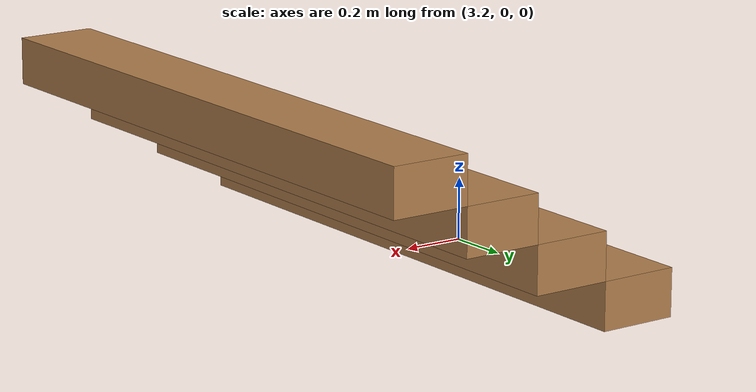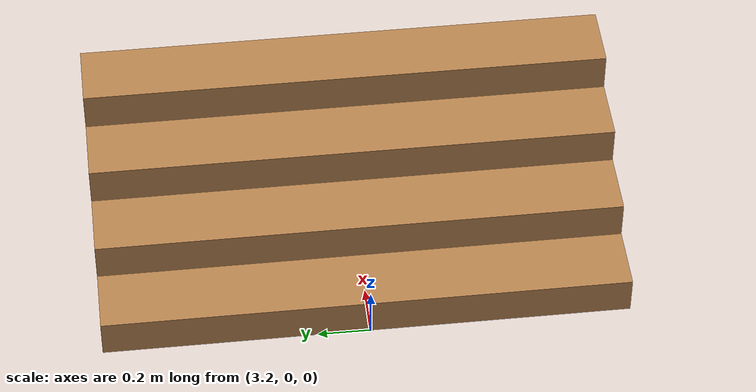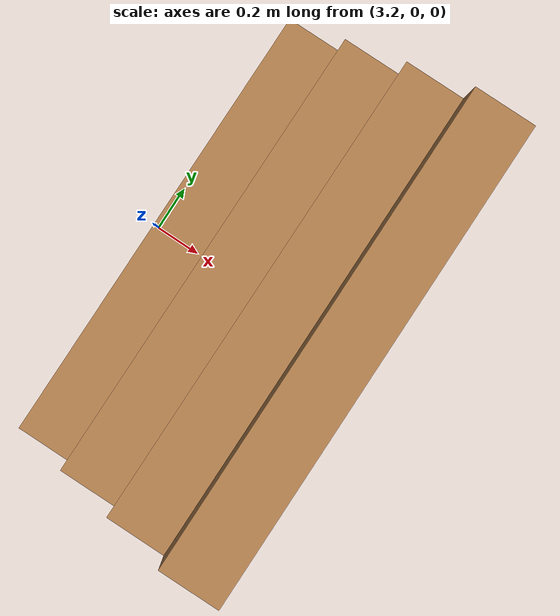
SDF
<?xml version='1.0'?>
<sdf version='1.6'>
  <model name='stairs'>
    <pose frame=''>3.7 0.009 0 0 -0 0</pose>
    <link name='Stairs_1'>
      <visual name='Stairs_1_Visual_0'>
        <pose frame=''>-0.375 -0 0.075 0 -0 1.5708</pose>
        <geometry>
          <box>
            <size>2 0.25 0.15</size>
          </box>
        </geometry>
        <material>
          <script>
            <uri>file://media/materials/scripts/gazebo.material</uri>
            <name>Gazebo/Wood</name>
          </script>
          <ambient>1 1 1 1</ambient>
        </material>
        <meta>
          <layer>0</layer>
        </meta>
      </visual>
      <collision name='Stairs_1_Collision_0'>
        <geometry>
          <box>
            <size>2 0.25 0.15</size>
          </box>
        </geometry>
        <pose frame=''>-0.375 -0 0.075 0 -0 1.5708</pose>
      </collision>
      <visual name='Stairs_1_Visual_1'>
        <pose frame=''>-0.125 -0 0.225 0 -0 1.5708</pose>
        <geometry>
          <box>
            <size>2 0.25 0.15</size>
          </box>
        </geometry>
        <material>
          <script>
            <uri>file://media/materials/scripts/gazebo.material</uri>
            <name>Gazebo/Wood</name>
          </script>
          <ambient>1 1 1 1</ambient>
        </material>
        <meta>
          <layer>0</layer>
        </meta>
      </visual>
      <collision name='Stairs_1_Collision_1'>
        <geometry>
          <box>
            <size>2 0.25 0.15</size>
          </box>
        </geometry>
        <pose frame=''>-0.125 -0 0.225 0 -0 1.5708</pose>
      </collision>
      <visual name='Stairs_1_Visual_2'>
        <pose frame=''>0.125 0 0.375 0 -0 1.5708</pose>
        <geometry>
          <box>
            <size>2 0.25 0.15</size>
          </box>
        </geometry>
        <material>
          <script>
            <uri>file://media/materials/scripts/gazebo.material</uri>
            <name>Gazebo/Wood</name>
          </script>
          <ambient>1 1 1 1</ambient>
        </material>
        <meta>
          <layer>0</layer>
        </meta>
      </visual>
      <collision name='Stairs_1_Collision_2'>
        <geometry>
          <box>
            <size>2 0.25 0.15</size>
          </box>
        </geometry>
        <pose frame=''>0.125 0 0.375 0 -0 1.5708</pose>
      </collision>
      <visual name='Stairs_1_Visual_3'>
        <pose frame=''>0.375 0 0.525 0 -0 1.5708</pose>
        <geometry>
          <box>
            <size>2 0.25 0.15</size>
          </box>
        </geometry>
        <material>
          <script>
            <uri>file://media/materials/scripts/gazebo.material</uri>
            <name>Gazebo/Wood</name>
          </script>
          <ambient>1 1 1 1</ambient>
        </material>
        <meta>
          <layer>0</layer>
        </meta>
      </visual>
      <collision name='Stairs_1_Collision_3'>
        <geometry>
          <box>
            <size>2 0.25 0.15</size>
          </box>
        </geometry>
        <pose frame=''>0.375 0 0.525 0 -0 1.5708</pose>
      </collision>
    </link>
    <static>1</static>
  </model>
</sdf>
